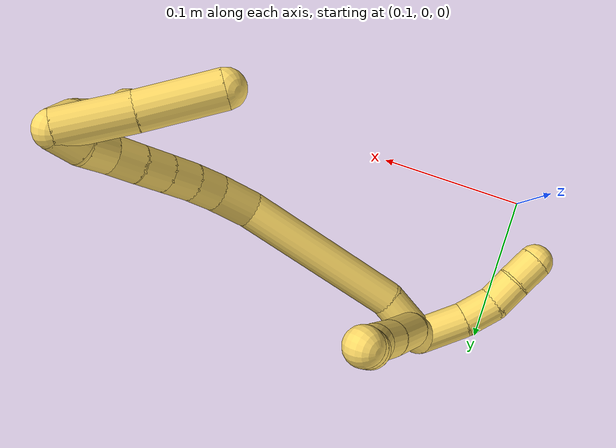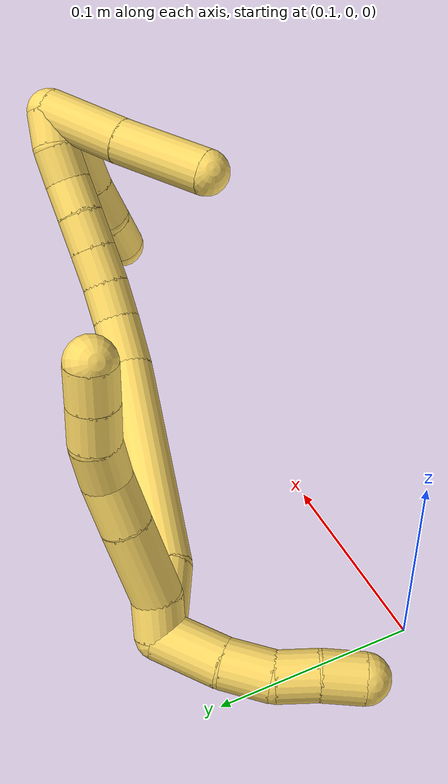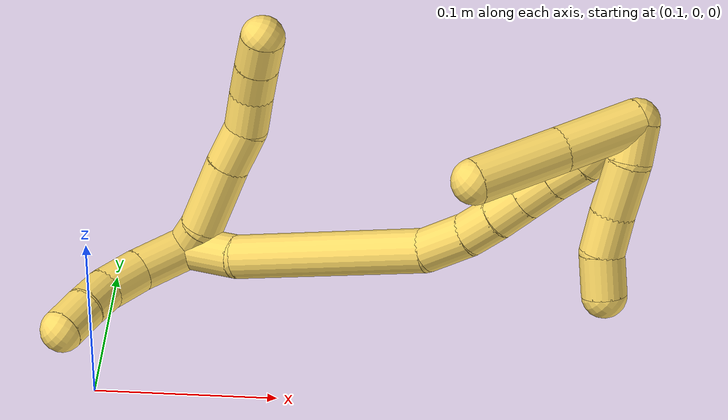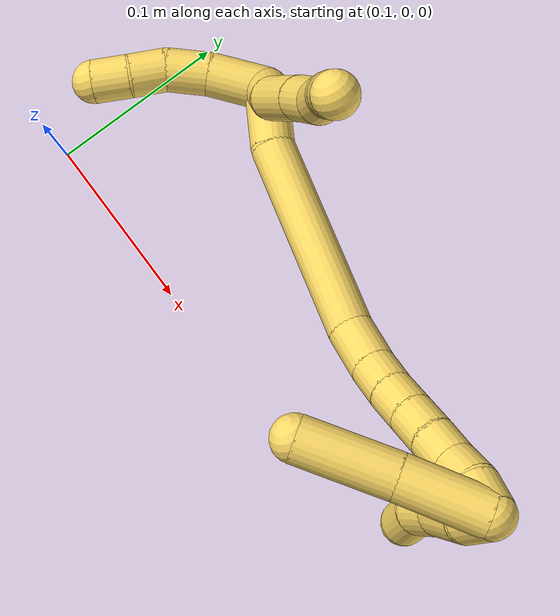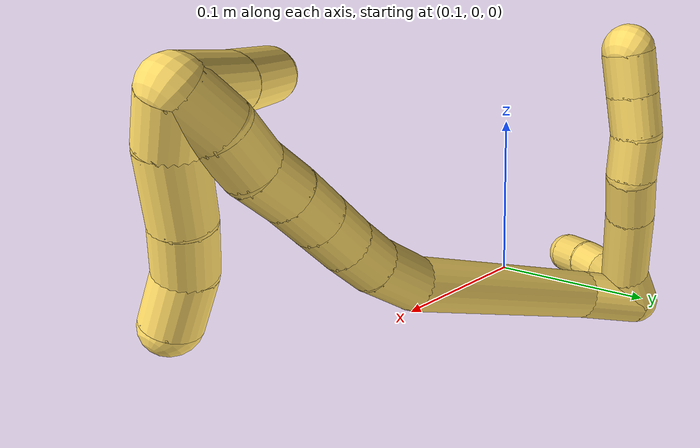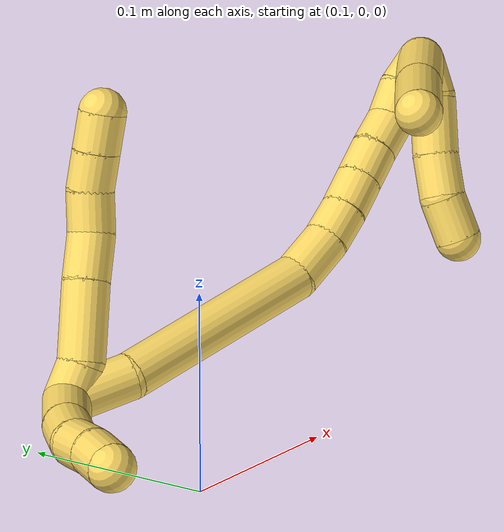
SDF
<sdf version="1.7">
 <world name="default">
  <model name="5">
   <static>0</static>
   <link name="5">
    <collision name="collision-cylinder-e_1_2_8">
     <pose>0.009476 -0.002524 -0.002183 2.28386 1.23219 1.99475</pose>
     <geometry><cylinder><radius>0.0125</radius><length>0.020093</length></cylinder></geometry>
     <surface>
      <friction><ode><mu>1.16</mu><mu2>1.16</mu2><slip1>0</slip1><slip2>0</slip2></ode></friction>
      <contact><ode><kp>1e+06</kp><kd>1</kd><max_vel>0</max_vel><min_depth>0.001</min_depth></ode></contact>
     </surface>
    </collision>
    <visual name="visual-cylinder-e_1_2_8">
     <pose>0.009476 -0.002524 -0.002183 2.28386 1.23219 1.99475</pose>
     <geometry><cylinder><radius>0.0125</radius><length>0.020093</length></cylinder></geometry>
     <material><ambient>1 0.858824 0.4 1</ambient></material>
    </visual>
    <collision name="collision-cylinder-e_2_8_9">
     <pose>0.035402 -0.016118 -0.010963 2.1082 0.906282 1.41709</pose>
     <geometry><cylinder><radius>0.0125</radius><length>0.041792</length></cylinder></geometry>
     <surface>
      <friction><ode><mu>1.16</mu><mu2>1.16</mu2><slip1>0</slip1><slip2>0</slip2></ode></friction>
      <contact><ode><kp>1e+06</kp><kd>1</kd><max_vel>0</max_vel><min_depth>0.001</min_depth></ode></contact>
     </surface>
    </collision>
    <visual name="visual-cylinder-e_2_8_9">
     <pose>0.035402 -0.016118 -0.010963 2.1082 0.906282 1.41709</pose>
     <geometry><cylinder><radius>0.0125</radius><length>0.041792</length></cylinder></geometry>
     <material><ambient>1 0.858824 0.4 1</ambient></material>
    </visual>
    <collision name="collision-cylinder-e_3_9_10">
     <pose>0.062146 -0.033762 -0.020859 2.03599 0.950345 1.39015</pose>
     <geometry><cylinder><radius>0.0125</radius><length>0.025304</length></cylinder></geometry>
     <surface>
      <friction><ode><mu>1.16</mu><mu2>1.16</mu2><slip1>0</slip1><slip2>0</slip2></ode></friction>
      <contact><ode><kp>1e+06</kp><kd>1</kd><max_vel>0</max_vel><min_depth>0.001</min_depth></ode></contact>
     </surface>
    </collision>
    <visual name="visual-cylinder-e_3_9_10">
     <pose>0.062146 -0.033762 -0.020859 2.03599 0.950345 1.39015</pose>
     <geometry><cylinder><radius>0.0125</radius><length>0.025304</length></cylinder></geometry>
     <material><ambient>1 0.858824 0.4 1</ambient></material>
    </visual>
    <collision name="collision-cylinder-e_4_10_11">
     <pose>0.080488 -0.045236 -0.029851 2.4309 0.819963 1.72812</pose>
     <geometry><cylinder><radius>0.0125</radius><length>0.022017</length></cylinder></geometry>
     <surface>
      <friction><ode><mu>1.16</mu><mu2>1.16</mu2><slip1>0</slip1><slip2>0</slip2></ode></friction>
      <contact><ode><kp>1e+06</kp><kd>1</kd><max_vel>0</max_vel><min_depth>0.001</min_depth></ode></contact>
     </surface>
    </collision>
    <visual name="visual-cylinder-e_4_10_11">
     <pose>0.080488 -0.045236 -0.029851 2.4309 0.819963 1.72812</pose>
     <geometry><cylinder><radius>0.0125</radius><length>0.022017</length></cylinder></geometry>
     <material><ambient>1 0.858824 0.4 1</ambient></material>
    </visual>
    <collision name="collision-cylinder-e_5_11_12">
     <pose>0.097009 -0.052653 -0.040575 2.67753 0.984611 2.31167</pose>
     <geometry><cylinder><radius>0.0125</radius><length>0.020341</length></cylinder></geometry>
     <surface>
      <friction><ode><mu>1.16</mu><mu2>1.16</mu2><slip1>0</slip1><slip2>0</slip2></ode></friction>
      <contact><ode><kp>1e+06</kp><kd>1</kd><max_vel>0</max_vel><min_depth>0.001</min_depth></ode></contact>
     </surface>
    </collision>
    <visual name="visual-cylinder-e_5_11_12">
     <pose>0.097009 -0.052653 -0.040575 2.67753 0.984611 2.31167</pose>
     <geometry><cylinder><radius>0.0125</radius><length>0.020341</length></cylinder></geometry>
     <material><ambient>1 0.858824 0.4 1</ambient></material>
    </visual>
    <collision name="collision-cylinder-e_6_12_6">
     <pose>0.114054 -0.057801 -0.050523 2.65051 0.99406 2.27605</pose>
     <geometry><cylinder><radius>0.0125</radius><length>0.020453</length></cylinder></geometry>
     <surface>
      <friction><ode><mu>1.16</mu><mu2>1.16</mu2><slip1>0</slip1><slip2>0</slip2></ode></friction>
      <contact><ode><kp>1e+06</kp><kd>1</kd><max_vel>0</max_vel><min_depth>0.001</min_depth></ode></contact>
     </surface>
    </collision>
    <visual name="visual-cylinder-e_6_12_6">
     <pose>0.114054 -0.057801 -0.050523 2.65051 0.99406 2.27605</pose>
     <geometry><cylinder><radius>0.0125</radius><length>0.020453</length></cylinder></geometry>
     <material><ambient>1 0.858824 0.4 1</ambient></material>
    </visual>
    <collision name="collision-cylinder-e_1_2_13">
     <pose>-0.00431 0.013469 -0.008939 -2.1567 -0.260573 0.479046</pose>
     <geometry><cylinder><radius>0.0125</radius><length>0.03346</length></cylinder></geometry>
     <surface>
      <friction><ode><mu>1.16</mu><mu2>1.16</mu2><slip1>0</slip1><slip2>0</slip2></ode></friction>
      <contact><ode><kp>1e+06</kp><kd>1</kd><max_vel>0</max_vel><min_depth>0.001</min_depth></ode></contact>
     </surface>
    </collision>
    <visual name="visual-cylinder-e_1_2_13">
     <pose>-0.00431 0.013469 -0.008939 -2.1567 -0.260573 0.479046</pose>
     <geometry><cylinder><radius>0.0125</radius><length>0.03346</length></cylinder></geometry>
     <material><ambient>1 0.858824 0.4 1</ambient></material>
    </visual>
    <collision name="collision-cylinder-e_2_13_14">
     <pose>-0.010066 0.037634 -0.023765 -2.074 -0.117886 0.199029</pose>
     <geometry><cylinder><radius>0.0125</radius><length>0.02459</length></cylinder></geometry>
     <surface>
      <friction><ode><mu>1.16</mu><mu2>1.16</mu2><slip1>0</slip1><slip2>0</slip2></ode></friction>
      <contact><ode><kp>1e+06</kp><kd>1</kd><max_vel>0</max_vel><min_depth>0.001</min_depth></ode></contact>
     </surface>
    </collision>
    <visual name="visual-cylinder-e_2_13_14">
     <pose>-0.010066 0.037634 -0.023765 -2.074 -0.117886 0.199029</pose>
     <geometry><cylinder><radius>0.0125</radius><length>0.02459</length></cylinder></geometry>
     <material><ambient>1 0.858824 0.4 1</ambient></material>
    </visual>
    <collision name="collision-cylinder-e_3_14_15">
     <pose>-0.00994 0.057969 -0.033127 -1.91672 0.152239 -0.216267</pose>
     <geometry><cylinder><radius>0.0125</radius><length>0.020731</length></cylinder></geometry>
     <surface>
      <friction><ode><mu>1.16</mu><mu2>1.16</mu2><slip1>0</slip1><slip2>0</slip2></ode></friction>
      <contact><ode><kp>1e+06</kp><kd>1</kd><max_vel>0</max_vel><min_depth>0.001</min_depth></ode></contact>
     </surface>
    </collision>
    <visual name="visual-cylinder-e_3_14_15">
     <pose>-0.00994 0.057969 -0.033127 -1.91672 0.152239 -0.216267</pose>
     <geometry><cylinder><radius>0.0125</radius><length>0.020731</length></cylinder></geometry>
     <material><ambient>1 0.858824 0.4 1</ambient></material>
    </visual>
    <collision name="collision-cylinder-e_4_15_5">
     <pose>-0.00804 0.077756 -0.039679 -1.86535 0.03097 -0.041757</pose>
     <geometry><cylinder><radius>0.0125</radius><length>0.021219</length></cylinder></geometry>
     <surface>
      <friction><ode><mu>1.16</mu><mu2>1.16</mu2><slip1>0</slip1><slip2>0</slip2></ode></friction>
      <contact><ode><kp>1e+06</kp><kd>1</kd><max_vel>0</max_vel><min_depth>0.001</min_depth></ode></contact>
     </surface>
    </collision>
    <visual name="visual-cylinder-e_4_15_5">
     <pose>-0.00804 0.077756 -0.039679 -1.86535 0.03097 -0.041757</pose>
     <geometry><cylinder><radius>0.0125</radius><length>0.021219</length></cylinder></geometry>
     <material><ambient>1 0.858824 0.4 1</ambient></material>
    </visual>
    <collision name="collision-cylinder-e_1_2_16">
     <pose>0.01517 0.002729 0.009319 -0.28493 1.00143 -0.156665</pose>
     <geometry><cylinder><radius>0.0125</radius><length>0.036024</length></cylinder></geometry>
     <surface>
      <friction><ode><mu>1.16</mu><mu2>1.16</mu2><slip1>0</slip1><slip2>0</slip2></ode></friction>
      <contact><ode><kp>1e+06</kp><kd>1</kd><max_vel>0</max_vel><min_depth>0.001</min_depth></ode></contact>
     </surface>
    </collision>
    <visual name="visual-cylinder-e_1_2_16">
     <pose>0.01517 0.002729 0.009319 -0.28493 1.00143 -0.156665</pose>
     <geometry><cylinder><radius>0.0125</radius><length>0.036024</length></cylinder></geometry>
     <material><ambient>1 0.858824 0.4 1</ambient></material>
    </visual>
    <collision name="collision-cylinder-e_2_16_17">
     <pose>0.078138 -0.001322 0.050588 0.209136 0.971338 0.110681</pose>
     <geometry><cylinder><radius>0.0125</radius><length>0.115782</length></cylinder></geometry>
     <surface>
      <friction><ode><mu>1.16</mu><mu2>1.16</mu2><slip1>0</slip1><slip2>0</slip2></ode></friction>
      <contact><ode><kp>1e+06</kp><kd>1</kd><max_vel>0</max_vel><min_depth>0.001</min_depth></ode></contact>
     </surface>
    </collision>
    <visual name="visual-cylinder-e_2_16_17">
     <pose>0.078138 -0.001322 0.050588 0.209136 0.971338 0.110681</pose>
     <geometry><cylinder><radius>0.0125</radius><length>0.115782</length></cylinder></geometry>
     <material><ambient>1 0.858824 0.4 1</ambient></material>
    </visual>
    <collision name="collision-cylinder-e_3_17_18">
     <pose>0.138535 -0.01201 0.086872 0.73353 1.13709 0.481359</pose>
     <geometry><cylinder><radius>0.0125</radius><length>0.027769</length></cylinder></geometry>
     <surface>
      <friction><ode><mu>1.16</mu><mu2>1.16</mu2><slip1>0</slip1><slip2>0</slip2></ode></friction>
      <contact><ode><kp>1e+06</kp><kd>1</kd><max_vel>0</max_vel><min_depth>0.001</min_depth></ode></contact>
     </surface>
    </collision>
    <visual name="visual-cylinder-e_3_17_18">
     <pose>0.138535 -0.01201 0.086872 0.73353 1.13709 0.481359</pose>
     <geometry><cylinder><radius>0.0125</radius><length>0.027769</length></cylinder></geometry>
     <material><ambient>1 0.858824 0.4 1</ambient></material>
    </visual>
    <collision name="collision-cylinder-e_4_18_19">
     <pose>0.160349 -0.019504 0.092941 1.12039 1.16263 0.781811</pose>
     <geometry><cylinder><radius>0.0125</radius><length>0.02008</length></cylinder></geometry>
     <surface>
      <friction><ode><mu>1.16</mu><mu2>1.16</mu2><slip1>0</slip1><slip2>0</slip2></ode></friction>
      <contact><ode><kp>1e+06</kp><kd>1</kd><max_vel>0</max_vel><min_depth>0.001</min_depth></ode></contact>
     </surface>
    </collision>
    <visual name="visual-cylinder-e_4_18_19">
     <pose>0.160349 -0.019504 0.092941 1.12039 1.16263 0.781811</pose>
     <geometry><cylinder><radius>0.0125</radius><length>0.02008</length></cylinder></geometry>
     <material><ambient>1 0.858824 0.4 1</ambient></material>
    </visual>
    <collision name="collision-cylinder-e_5_19_20">
     <pose>0.178593 -0.027274 0.096095 1.24359 1.11585 0.841081</pose>
     <geometry><cylinder><radius>0.0125</radius><length>0.020103</length></cylinder></geometry>
     <surface>
      <friction><ode><mu>1.16</mu><mu2>1.16</mu2><slip1>0</slip1><slip2>0</slip2></ode></friction>
      <contact><ode><kp>1e+06</kp><kd>1</kd><max_vel>0</max_vel><min_depth>0.001</min_depth></ode></contact>
     </surface>
    </collision>
    <visual name="visual-cylinder-e_5_19_20">
     <pose>0.178593 -0.027274 0.096095 1.24359 1.11585 0.841081</pose>
     <geometry><cylinder><radius>0.0125</radius><length>0.020103</length></cylinder></geometry>
     <material><ambient>1 0.858824 0.4 1</ambient></material>
    </visual>
    <collision name="collision-cylinder-e_6_20_21">
     <pose>0.196602 -0.035651 0.098976 1.23565 1.11142 0.831179</pose>
     <geometry><cylinder><radius>0.0125</radius><length>0.020037</length></cylinder></geometry>
     <surface>
      <friction><ode><mu>1.16</mu><mu2>1.16</mu2><slip1>0</slip1><slip2>0</slip2></ode></friction>
      <contact><ode><kp>1e+06</kp><kd>1</kd><max_vel>0</max_vel><min_depth>0.001</min_depth></ode></contact>
     </surface>
    </collision>
    <visual name="visual-cylinder-e_6_20_21">
     <pose>0.196602 -0.035651 0.098976 1.23565 1.11142 0.831179</pose>
     <geometry><cylinder><radius>0.0125</radius><length>0.020037</length></cylinder></geometry>
     <material><ambient>1 0.858824 0.4 1</ambient></material>
    </visual>
    <collision name="collision-cylinder-e_7_21_22">
     <pose>0.214491 -0.043894 0.102503 1.09888 1.09912 0.71764</pose>
     <geometry><cylinder><radius>0.0125</radius><length>0.020003</length></cylinder></geometry>
     <surface>
      <friction><ode><mu>1.16</mu><mu2>1.16</mu2><slip1>0</slip1><slip2>0</slip2></ode></friction>
      <contact><ode><kp>1e+06</kp><kd>1</kd><max_vel>0</max_vel><min_depth>0.001</min_depth></ode></contact>
     </surface>
    </collision>
    <visual name="visual-cylinder-e_7_21_22">
     <pose>0.214491 -0.043894 0.102503 1.09888 1.09912 0.71764</pose>
     <geometry><cylinder><radius>0.0125</radius><length>0.020003</length></cylinder></geometry>
     <material><ambient>1 0.858824 0.4 1</ambient></material>
    </visual>
    <collision name="collision-cylinder-e_8_22_23">
     <pose>0.232379 -0.052362 0.10465 1.55252 1.11323 1.0969</pose>
     <geometry><cylinder><radius>0.0125</radius><length>0.020018</length></cylinder></geometry>
     <surface>
      <friction><ode><mu>1.16</mu><mu2>1.16</mu2><slip1>0</slip1><slip2>0</slip2></ode></friction>
      <contact><ode><kp>1e+06</kp><kd>1</kd><max_vel>0</max_vel><min_depth>0.001</min_depth></ode></contact>
     </surface>
    </collision>
    <visual name="visual-cylinder-e_8_22_23">
     <pose>0.232379 -0.052362 0.10465 1.55252 1.11323 1.0969</pose>
     <geometry><cylinder><radius>0.0125</radius><length>0.020018</length></cylinder></geometry>
     <material><ambient>1 0.858824 0.4 1</ambient></material>
    </visual>
    <collision name="collision-cylinder-e_9_23_1">
     <pose>0.251065 -0.059308 0.105857 1.15112 1.2933 0.910956</pose>
     <geometry><cylinder><radius>0.0125</radius><length>0.020185</length></cylinder></geometry>
     <surface>
      <friction><ode><mu>1.16</mu><mu2>1.16</mu2><slip1>0</slip1><slip2>0</slip2></ode></friction>
      <contact><ode><kp>1e+06</kp><kd>1</kd><max_vel>0</max_vel><min_depth>0.001</min_depth></ode></contact>
     </surface>
    </collision>
    <visual name="visual-cylinder-e_9_23_1">
     <pose>0.251065 -0.059308 0.105857 1.15112 1.2933 0.910956</pose>
     <geometry><cylinder><radius>0.0125</radius><length>0.020185</length></cylinder></geometry>
     <material><ambient>1 0.858824 0.4 1</ambient></material>
    </visual>
    <collision name="collision-cylinder-e_1_1_24">
     <pose>0.25305 -0.044363 0.09284 -2.25136 -0.330878 0.673346</pose>
     <geometry><cylinder><radius>0.0125</radius><length>0.047534</length></cylinder></geometry>
     <surface>
      <friction><ode><mu>1.16</mu><mu2>1.16</mu2><slip1>0</slip1><slip2>0</slip2></ode></friction>
      <contact><ode><kp>1e+06</kp><kd>1</kd><max_vel>0</max_vel><min_depth>0.001</min_depth></ode></contact>
     </surface>
    </collision>
    <visual name="visual-cylinder-e_1_1_24">
     <pose>0.25305 -0.044363 0.09284 -2.25136 -0.330878 0.673346</pose>
     <geometry><cylinder><radius>0.0125</radius><length>0.047534</length></cylinder></geometry>
     <material><ambient>1 0.858824 0.4 1</ambient></material>
    </visual>
    <collision name="collision-cylinder-e_2_24_4">
     <pose>0.23785 -0.007341 0.062886 -2.25078 -0.289114 0.591941</pose>
     <geometry><cylinder><radius>0.0125</radius><length>0.052466</length></cylinder></geometry>
     <surface>
      <friction><ode><mu>1.16</mu><mu2>1.16</mu2><slip1>0</slip1><slip2>0</slip2></ode></friction>
      <contact><ode><kp>1e+06</kp><kd>1</kd><max_vel>0</max_vel><min_depth>0.001</min_depth></ode></contact>
     </surface>
    </collision>
    <visual name="visual-cylinder-e_2_24_4">
     <pose>0.23785 -0.007341 0.062886 -2.25078 -0.289114 0.591941</pose>
     <geometry><cylinder><radius>0.0125</radius><length>0.052466</length></cylinder></geometry>
     <material><ambient>1 0.858824 0.4 1</ambient></material>
    </visual>
    <collision name="collision-cylinder-e_1_1_25">
     <pose>0.25487 -0.054115 0.112098 -0.985528 -0.567412 0.310593</pose>
     <geometry><cylinder><radius>0.0125</radius><length>0.021959</length></cylinder></geometry>
     <surface>
      <friction><ode><mu>1.16</mu><mu2>1.16</mu2><slip1>0</slip1><slip2>0</slip2></ode></friction>
      <contact><ode><kp>1e+06</kp><kd>1</kd><max_vel>0</max_vel><min_depth>0.001</min_depth></ode></contact>
     </surface>
    </collision>
    <visual name="visual-cylinder-e_1_1_25">
     <pose>0.25487 -0.054115 0.112098 -0.985528 -0.567412 0.310593</pose>
     <geometry><cylinder><radius>0.0125</radius><length>0.021959</length></cylinder></geometry>
     <material><ambient>1 0.858824 0.4 1</ambient></material>
    </visual>
    <collision name="collision-cylinder-e_2_25_26">
     <pose>0.237812 -0.038029 0.123812 -0.903096 -0.808324 0.409047</pose>
     <geometry><cylinder><radius>0.0125</radius><length>0.030857</length></cylinder></geometry>
     <surface>
      <friction><ode><mu>1.16</mu><mu2>1.16</mu2><slip1>0</slip1><slip2>0</slip2></ode></friction>
      <contact><ode><kp>1e+06</kp><kd>1</kd><max_vel>0</max_vel><min_depth>0.001</min_depth></ode></contact>
     </surface>
    </collision>
    <visual name="visual-cylinder-e_2_25_26">
     <pose>0.237812 -0.038029 0.123812 -0.903096 -0.808324 0.409047</pose>
     <geometry><cylinder><radius>0.0125</radius><length>0.030857</length></cylinder></geometry>
     <material><ambient>1 0.858824 0.4 1</ambient></material>
    </visual>
    <collision name="collision-cylinder-e_3_26_27">
     <pose>0.219121 -0.022403 0.135573 -0.952554 -0.702153 0.373484</pose>
     <geometry><cylinder><radius>0.0125</radius><length>0.023333</length></cylinder></geometry>
     <surface>
      <friction><ode><mu>1.16</mu><mu2>1.16</mu2><slip1>0</slip1><slip2>0</slip2></ode></friction>
      <contact><ode><kp>1e+06</kp><kd>1</kd><max_vel>0</max_vel><min_depth>0.001</min_depth></ode></contact>
     </surface>
    </collision>
    <visual name="visual-cylinder-e_3_26_27">
     <pose>0.219121 -0.022403 0.135573 -0.952554 -0.702153 0.373484</pose>
     <geometry><cylinder><radius>0.0125</radius><length>0.023333</length></cylinder></geometry>
     <material><ambient>1 0.858824 0.4 1</ambient></material>
    </visual>
    <collision name="collision-cylinder-e_4_27_3">
     <pose>0.206078 -0.00836 0.14885 -0.696299 -0.480101 0.177205</pose>
     <geometry><cylinder><radius>0.0125</radius><length>0.023851</length></cylinder></geometry>
     <surface>
      <friction><ode><mu>1.16</mu><mu2>1.16</mu2><slip1>0</slip1><slip2>0</slip2></ode></friction>
      <contact><ode><kp>1e+06</kp><kd>1</kd><max_vel>0</max_vel><min_depth>0.001</min_depth></ode></contact>
     </surface>
    </collision>
    <visual name="visual-cylinder-e_4_27_3">
     <pose>0.206078 -0.00836 0.14885 -0.696299 -0.480101 0.177205</pose>
     <geometry><cylinder><radius>0.0125</radius><length>0.023851</length></cylinder></geometry>
     <material><ambient>1 0.858824 0.4 1</ambient></material>
    </visual>
    <collision name="collision-sphere-3">
     <pose>0.20057 -0.001576 0.156965 0 -0 0</pose>
     <geometry><sphere><radius>0.0125</radius></sphere></geometry>
     <surface>
      <friction><ode><mu>1.16</mu><mu2>1.16</mu2><slip1>0</slip1><slip2>0</slip2></ode></friction>
      <contact><ode><kp>1e+06</kp><kd>1</kd><max_vel>0</max_vel><min_depth>0.001</min_depth></ode></contact>
     </surface>
    </collision>
    <visual name="visual-sphere-3">
     <pose>0.20057 -0.001576 0.156965 0 -0 0</pose>
     <geometry><sphere><radius>0.0125</radius></sphere></geometry>
     <material><ambient>1 0.858824 0.4 1</ambient></material>
    </visual>
    <collision name="collision-sphere-27">
     <pose>0.211586 -0.015144 0.140735 0 -0 0</pose>
     <geometry><sphere><radius>0.0125</radius></sphere></geometry>
     <surface>
      <friction><ode><mu>1.16</mu><mu2>1.16</mu2><slip1>0</slip1><slip2>0</slip2></ode></friction>
      <contact><ode><kp>1e+06</kp><kd>1</kd><max_vel>0</max_vel><min_depth>0.001</min_depth></ode></contact>
     </surface>
    </collision>
    <visual name="visual-sphere-27">
     <pose>0.211586 -0.015144 0.140735 0 -0 0</pose>
     <geometry><sphere><radius>0.0125</radius></sphere></geometry>
     <material><ambient>1 0.858824 0.4 1</ambient></material>
    </visual>
    <collision name="collision-sphere-26">
     <pose>0.226656 -0.029661 0.13041 0 -0 0</pose>
     <geometry><sphere><radius>0.0125</radius></sphere></geometry>
     <surface>
      <friction><ode><mu>1.16</mu><mu2>1.16</mu2><slip1>0</slip1><slip2>0</slip2></ode></friction>
      <contact><ode><kp>1e+06</kp><kd>1</kd><max_vel>0</max_vel><min_depth>0.001</min_depth></ode></contact>
     </surface>
    </collision>
    <visual name="visual-sphere-26">
     <pose>0.226656 -0.029661 0.13041 0 -0 0</pose>
     <geometry><sphere><radius>0.0125</radius></sphere></geometry>
     <material><ambient>1 0.858824 0.4 1</ambient></material>
    </visual>
    <collision name="collision-sphere-25">
     <pose>0.248969 -0.046397 0.117213 0 -0 0</pose>
     <geometry><sphere><radius>0.0125</radius></sphere></geometry>
     <surface>
      <friction><ode><mu>1.16</mu><mu2>1.16</mu2><slip1>0</slip1><slip2>0</slip2></ode></friction>
      <contact><ode><kp>1e+06</kp><kd>1</kd><max_vel>0</max_vel><min_depth>0.001</min_depth></ode></contact>
     </surface>
    </collision>
    <visual name="visual-sphere-25">
     <pose>0.248969 -0.046397 0.117213 0 -0 0</pose>
     <geometry><sphere><radius>0.0125</radius></sphere></geometry>
     <material><ambient>1 0.858824 0.4 1</ambient></material>
    </visual>
    <collision name="collision-sphere-4">
     <pose>0.23037 0.012211 0.047076 0 -0 0</pose>
     <geometry><sphere><radius>0.0125</radius></sphere></geometry>
     <surface>
      <friction><ode><mu>1.16</mu><mu2>1.16</mu2><slip1>0</slip1><slip2>0</slip2></ode></friction>
      <contact><ode><kp>1e+06</kp><kd>1</kd><max_vel>0</max_vel><min_depth>0.001</min_depth></ode></contact>
     </surface>
    </collision>
    <visual name="visual-sphere-4">
     <pose>0.23037 0.012211 0.047076 0 -0 0</pose>
     <geometry><sphere><radius>0.0125</radius></sphere></geometry>
     <material><ambient>1 0.858824 0.4 1</ambient></material>
    </visual>
    <collision name="collision-sphere-24">
     <pose>0.245329 -0.026892 0.078696 0 -0 0</pose>
     <geometry><sphere><radius>0.0125</radius></sphere></geometry>
     <surface>
      <friction><ode><mu>1.16</mu><mu2>1.16</mu2><slip1>0</slip1><slip2>0</slip2></ode></friction>
      <contact><ode><kp>1e+06</kp><kd>1</kd><max_vel>0</max_vel><min_depth>0.001</min_depth></ode></contact>
     </surface>
    </collision>
    <visual name="visual-sphere-24">
     <pose>0.245329 -0.026892 0.078696 0 -0 0</pose>
     <geometry><sphere><radius>0.0125</radius></sphere></geometry>
     <material><ambient>1 0.858824 0.4 1</ambient></material>
    </visual>
    <collision name="collision-sphere-1">
     <pose>0.260771 -0.061833 0.106984 0 -0 0</pose>
     <geometry><sphere><radius>0.0125</radius></sphere></geometry>
     <surface>
      <friction><ode><mu>1.16</mu><mu2>1.16</mu2><slip1>0</slip1><slip2>0</slip2></ode></friction>
      <contact><ode><kp>1e+06</kp><kd>1</kd><max_vel>0</max_vel><min_depth>0.001</min_depth></ode></contact>
     </surface>
    </collision>
    <visual name="visual-sphere-1">
     <pose>0.260771 -0.061833 0.106984 0 -0 0</pose>
     <geometry><sphere><radius>0.0125</radius></sphere></geometry>
     <material><ambient>1 0.858824 0.4 1</ambient></material>
    </visual>
    <collision name="collision-sphere-23">
     <pose>0.241359 -0.056783 0.10473 0 -0 0</pose>
     <geometry><sphere><radius>0.0125</radius></sphere></geometry>
     <surface>
      <friction><ode><mu>1.16</mu><mu2>1.16</mu2><slip1>0</slip1><slip2>0</slip2></ode></friction>
      <contact><ode><kp>1e+06</kp><kd>1</kd><max_vel>0</max_vel><min_depth>0.001</min_depth></ode></contact>
     </surface>
    </collision>
    <visual name="visual-sphere-23">
     <pose>0.241359 -0.056783 0.10473 0 -0 0</pose>
     <geometry><sphere><radius>0.0125</radius></sphere></geometry>
     <material><ambient>1 0.858824 0.4 1</ambient></material>
    </visual>
    <collision name="collision-sphere-22">
     <pose>0.2234 -0.047941 0.104569 0 -0 0</pose>
     <geometry><sphere><radius>0.0125</radius></sphere></geometry>
     <surface>
      <friction><ode><mu>1.16</mu><mu2>1.16</mu2><slip1>0</slip1><slip2>0</slip2></ode></friction>
      <contact><ode><kp>1e+06</kp><kd>1</kd><max_vel>0</max_vel><min_depth>0.001</min_depth></ode></contact>
     </surface>
    </collision>
    <visual name="visual-sphere-22">
     <pose>0.2234 -0.047941 0.104569 0 -0 0</pose>
     <geometry><sphere><radius>0.0125</radius></sphere></geometry>
     <material><ambient>1 0.858824 0.4 1</ambient></material>
    </visual>
    <collision name="collision-sphere-21">
     <pose>0.205582 -0.039846 0.100437 0 -0 0</pose>
     <geometry><sphere><radius>0.0125</radius></sphere></geometry>
     <surface>
      <friction><ode><mu>1.16</mu><mu2>1.16</mu2><slip1>0</slip1><slip2>0</slip2></ode></friction>
      <contact><ode><kp>1e+06</kp><kd>1</kd><max_vel>0</max_vel><min_depth>0.001</min_depth></ode></contact>
     </surface>
    </collision>
    <visual name="visual-sphere-21">
     <pose>0.205582 -0.039846 0.100437 0 -0 0</pose>
     <geometry><sphere><radius>0.0125</radius></sphere></geometry>
     <material><ambient>1 0.858824 0.4 1</ambient></material>
    </visual>
    <collision name="collision-sphere-12">
     <pose>0.105482 -0.055172 -0.045606 0 -0 0</pose>
     <geometry><sphere><radius>0.0125</radius></sphere></geometry>
     <surface>
      <friction><ode><mu>1.16</mu><mu2>1.16</mu2><slip1>0</slip1><slip2>0</slip2></ode></friction>
      <contact><ode><kp>1e+06</kp><kd>1</kd><max_vel>0</max_vel><min_depth>0.001</min_depth></ode></contact>
     </surface>
    </collision>
    <visual name="visual-sphere-12">
     <pose>0.105482 -0.055172 -0.045606 0 -0 0</pose>
     <geometry><sphere><radius>0.0125</radius></sphere></geometry>
     <material><ambient>1 0.858824 0.4 1</ambient></material>
    </visual>
    <collision name="collision-sphere-11">
     <pose>0.088537 -0.050135 -0.035543 0 -0 0</pose>
     <geometry><sphere><radius>0.0125</radius></sphere></geometry>
     <surface>
      <friction><ode><mu>1.16</mu><mu2>1.16</mu2><slip1>0</slip1><slip2>0</slip2></ode></friction>
      <contact><ode><kp>1e+06</kp><kd>1</kd><max_vel>0</max_vel><min_depth>0.001</min_depth></ode></contact>
     </surface>
    </collision>
    <visual name="visual-sphere-11">
     <pose>0.088537 -0.050135 -0.035543 0 -0 0</pose>
     <geometry><sphere><radius>0.0125</radius></sphere></geometry>
     <material><ambient>1 0.858824 0.4 1</ambient></material>
    </visual>
    <collision name="collision-sphere-10">
     <pose>0.072439 -0.040336 -0.024159 0 -0 0</pose>
     <geometry><sphere><radius>0.0125</radius></sphere></geometry>
     <surface>
      <friction><ode><mu>1.16</mu><mu2>1.16</mu2><slip1>0</slip1><slip2>0</slip2></ode></friction>
      <contact><ode><kp>1e+06</kp><kd>1</kd><max_vel>0</max_vel><min_depth>0.001</min_depth></ode></contact>
     </surface>
    </collision>
    <visual name="visual-sphere-10">
     <pose>0.072439 -0.040336 -0.024159 0 -0 0</pose>
     <geometry><sphere><radius>0.0125</radius></sphere></geometry>
     <material><ambient>1 0.858824 0.4 1</ambient></material>
    </visual>
    <collision name="collision-sphere-9">
     <pose>0.051852 -0.027188 -0.017559 0 -0 0</pose>
     <geometry><sphere><radius>0.0125</radius></sphere></geometry>
     <surface>
      <friction><ode><mu>1.16</mu><mu2>1.16</mu2><slip1>0</slip1><slip2>0</slip2></ode></friction>
      <contact><ode><kp>1e+06</kp><kd>1</kd><max_vel>0</max_vel><min_depth>0.001</min_depth></ode></contact>
     </surface>
    </collision>
    <visual name="visual-sphere-9">
     <pose>0.051852 -0.027188 -0.017559 0 -0 0</pose>
     <geometry><sphere><radius>0.0125</radius></sphere></geometry>
     <material><ambient>1 0.858824 0.4 1</ambient></material>
    </visual>
    <collision name="collision-sphere-2">
     <geometry><sphere><radius>0.0125</radius></sphere></geometry>
     <surface>
      <friction><ode><mu>1.16</mu><mu2>1.16</mu2><slip1>0</slip1><slip2>0</slip2></ode></friction>
      <contact><ode><kp>1e+06</kp><kd>1</kd><max_vel>0</max_vel><min_depth>0.001</min_depth></ode></contact>
     </surface>
    </collision>
    <visual name="visual-sphere-2">
     <geometry><sphere><radius>0.0125</radius></sphere></geometry>
     <material><ambient>1 0.858824 0.4 1</ambient></material>
    </visual>
    <collision name="collision-sphere-19">
     <pose>0.169564 -0.023091 0.094676 0 -0 0</pose>
     <geometry><sphere><radius>0.0125</radius></sphere></geometry>
     <surface>
      <friction><ode><mu>1.16</mu><mu2>1.16</mu2><slip1>0</slip1><slip2>0</slip2></ode></friction>
      <contact><ode><kp>1e+06</kp><kd>1</kd><max_vel>0</max_vel><min_depth>0.001</min_depth></ode></contact>
     </surface>
    </collision>
    <visual name="visual-sphere-19">
     <pose>0.169564 -0.023091 0.094676 0 -0 0</pose>
     <geometry><sphere><radius>0.0125</radius></sphere></geometry>
     <material><ambient>1 0.858824 0.4 1</ambient></material>
    </visual>
    <collision name="collision-sphere-8">
     <pose>0.018952 -0.005048 -0.004366 0 -0 0</pose>
     <geometry><sphere><radius>0.0125</radius></sphere></geometry>
     <surface>
      <friction><ode><mu>1.16</mu><mu2>1.16</mu2><slip1>0</slip1><slip2>0</slip2></ode></friction>
      <contact><ode><kp>1e+06</kp><kd>1</kd><max_vel>0</max_vel><min_depth>0.001</min_depth></ode></contact>
     </surface>
    </collision>
    <visual name="visual-sphere-8">
     <pose>0.018952 -0.005048 -0.004366 0 -0 0</pose>
     <geometry><sphere><radius>0.0125</radius></sphere></geometry>
     <material><ambient>1 0.858824 0.4 1</ambient></material>
    </visual>
    <collision name="collision-sphere-6">
     <pose>0.122626 -0.060431 -0.05544 0 -0 0</pose>
     <geometry><sphere><radius>0.0125</radius></sphere></geometry>
     <surface>
      <friction><ode><mu>1.16</mu><mu2>1.16</mu2><slip1>0</slip1><slip2>0</slip2></ode></friction>
      <contact><ode><kp>1e+06</kp><kd>1</kd><max_vel>0</max_vel><min_depth>0.001</min_depth></ode></contact>
     </surface>
    </collision>
    <visual name="visual-sphere-6">
     <pose>0.122626 -0.060431 -0.05544 0 -0 0</pose>
     <geometry><sphere><radius>0.0125</radius></sphere></geometry>
     <material><ambient>1 0.858824 0.4 1</ambient></material>
    </visual>
    <collision name="collision-sphere-13">
     <pose>-0.00862 0.026938 -0.017877 0 -0 0</pose>
     <geometry><sphere><radius>0.0125</radius></sphere></geometry>
     <surface>
      <friction><ode><mu>1.16</mu><mu2>1.16</mu2><slip1>0</slip1><slip2>0</slip2></ode></friction>
      <contact><ode><kp>1e+06</kp><kd>1</kd><max_vel>0</max_vel><min_depth>0.001</min_depth></ode></contact>
     </surface>
    </collision>
    <visual name="visual-sphere-13">
     <pose>-0.00862 0.026938 -0.017877 0 -0 0</pose>
     <geometry><sphere><radius>0.0125</radius></sphere></geometry>
     <material><ambient>1 0.858824 0.4 1</ambient></material>
    </visual>
    <collision name="collision-sphere-14">
     <pose>-0.011512 0.04833 -0.029653 0 -0 0</pose>
     <geometry><sphere><radius>0.0125</radius></sphere></geometry>
     <surface>
      <friction><ode><mu>1.16</mu><mu2>1.16</mu2><slip1>0</slip1><slip2>0</slip2></ode></friction>
      <contact><ode><kp>1e+06</kp><kd>1</kd><max_vel>0</max_vel><min_depth>0.001</min_depth></ode></contact>
     </surface>
    </collision>
    <visual name="visual-sphere-14">
     <pose>-0.011512 0.04833 -0.029653 0 -0 0</pose>
     <geometry><sphere><radius>0.0125</radius></sphere></geometry>
     <material><ambient>1 0.858824 0.4 1</ambient></material>
    </visual>
    <collision name="collision-sphere-15">
     <pose>-0.008368 0.067608 -0.036601 0 -0 0</pose>
     <geometry><sphere><radius>0.0125</radius></sphere></geometry>
     <surface>
      <friction><ode><mu>1.16</mu><mu2>1.16</mu2><slip1>0</slip1><slip2>0</slip2></ode></friction>
      <contact><ode><kp>1e+06</kp><kd>1</kd><max_vel>0</max_vel><min_depth>0.001</min_depth></ode></contact>
     </surface>
    </collision>
    <visual name="visual-sphere-15">
     <pose>-0.008368 0.067608 -0.036601 0 -0 0</pose>
     <geometry><sphere><radius>0.0125</radius></sphere></geometry>
     <material><ambient>1 0.858824 0.4 1</ambient></material>
    </visual>
    <collision name="collision-sphere-5">
     <pose>-0.007711 0.087904 -0.042758 0 -0 0</pose>
     <geometry><sphere><radius>0.0125</radius></sphere></geometry>
     <surface>
      <friction><ode><mu>1.16</mu><mu2>1.16</mu2><slip1>0</slip1><slip2>0</slip2></ode></friction>
      <contact><ode><kp>1e+06</kp><kd>1</kd><max_vel>0</max_vel><min_depth>0.001</min_depth></ode></contact>
     </surface>
    </collision>
    <visual name="visual-sphere-5">
     <pose>-0.007711 0.087904 -0.042758 0 -0 0</pose>
     <geometry><sphere><radius>0.0125</radius></sphere></geometry>
     <material><ambient>1 0.858824 0.4 1</ambient></material>
    </visual>
    <collision name="collision-sphere-16">
     <pose>0.030341 0.005459 0.018637 0 -0 0</pose>
     <geometry><sphere><radius>0.0125</radius></sphere></geometry>
     <surface>
      <friction><ode><mu>1.16</mu><mu2>1.16</mu2><slip1>0</slip1><slip2>0</slip2></ode></friction>
      <contact><ode><kp>1e+06</kp><kd>1</kd><max_vel>0</max_vel><min_depth>0.001</min_depth></ode></contact>
     </surface>
    </collision>
    <visual name="visual-sphere-16">
     <pose>0.030341 0.005459 0.018637 0 -0 0</pose>
     <geometry><sphere><radius>0.0125</radius></sphere></geometry>
     <material><ambient>1 0.858824 0.4 1</ambient></material>
    </visual>
    <collision name="collision-sphere-17">
     <pose>0.125935 -0.008103 0.082538 0 -0 0</pose>
     <geometry><sphere><radius>0.0125</radius></sphere></geometry>
     <surface>
      <friction><ode><mu>1.16</mu><mu2>1.16</mu2><slip1>0</slip1><slip2>0</slip2></ode></friction>
      <contact><ode><kp>1e+06</kp><kd>1</kd><max_vel>0</max_vel><min_depth>0.001</min_depth></ode></contact>
     </surface>
    </collision>
    <visual name="visual-sphere-17">
     <pose>0.125935 -0.008103 0.082538 0 -0 0</pose>
     <geometry><sphere><radius>0.0125</radius></sphere></geometry>
     <material><ambient>1 0.858824 0.4 1</ambient></material>
    </visual>
    <collision name="collision-sphere-18">
     <pose>0.151134 -0.015916 0.091206 0 -0 0</pose>
     <geometry><sphere><radius>0.0125</radius></sphere></geometry>
     <surface>
      <friction><ode><mu>1.16</mu><mu2>1.16</mu2><slip1>0</slip1><slip2>0</slip2></ode></friction>
      <contact><ode><kp>1e+06</kp><kd>1</kd><max_vel>0</max_vel><min_depth>0.001</min_depth></ode></contact>
     </surface>
    </collision>
    <visual name="visual-sphere-18">
     <pose>0.151134 -0.015916 0.091206 0 -0 0</pose>
     <geometry><sphere><radius>0.0125</radius></sphere></geometry>
     <material><ambient>1 0.858824 0.4 1</ambient></material>
    </visual>
    <collision name="collision-sphere-20">
     <pose>0.187622 -0.031456 0.097515 0 -0 0</pose>
     <geometry><sphere><radius>0.0125</radius></sphere></geometry>
     <surface>
      <friction><ode><mu>1.16</mu><mu2>1.16</mu2><slip1>0</slip1><slip2>0</slip2></ode></friction>
      <contact><ode><kp>1e+06</kp><kd>1</kd><max_vel>0</max_vel><min_depth>0.001</min_depth></ode></contact>
     </surface>
    </collision>
    <visual name="visual-sphere-20">
     <pose>0.187622 -0.031456 0.097515 0 -0 0</pose>
     <geometry><sphere><radius>0.0125</radius></sphere></geometry>
     <material><ambient>1 0.858824 0.4 1</ambient></material>
    </visual>
    <inertial>
     <pose>0.125629 -0.015125 0.047225 0 -0 0</pose>
     <mass>0.75</mass>
     <inertia>
      <ixx>0.000176</ixx>
      <ixy>0</ixy>
      <ixz>0</ixz>
      <iyy>0.0002</iyy>
      <iyz>0</iyz>
      <izz>-0.000131</izz>
     </inertia>
    </inertial>
   </link>
   <pose>0.139596 0.112497 0.014615 -2.72443 -0.801341 -0.607098</pose>
  </model>
 </world>
</sdf>
